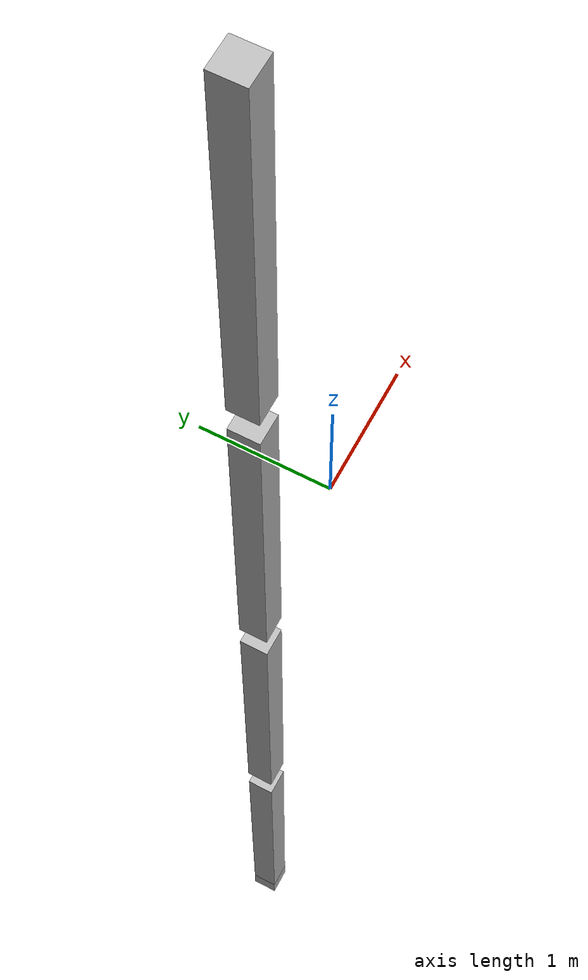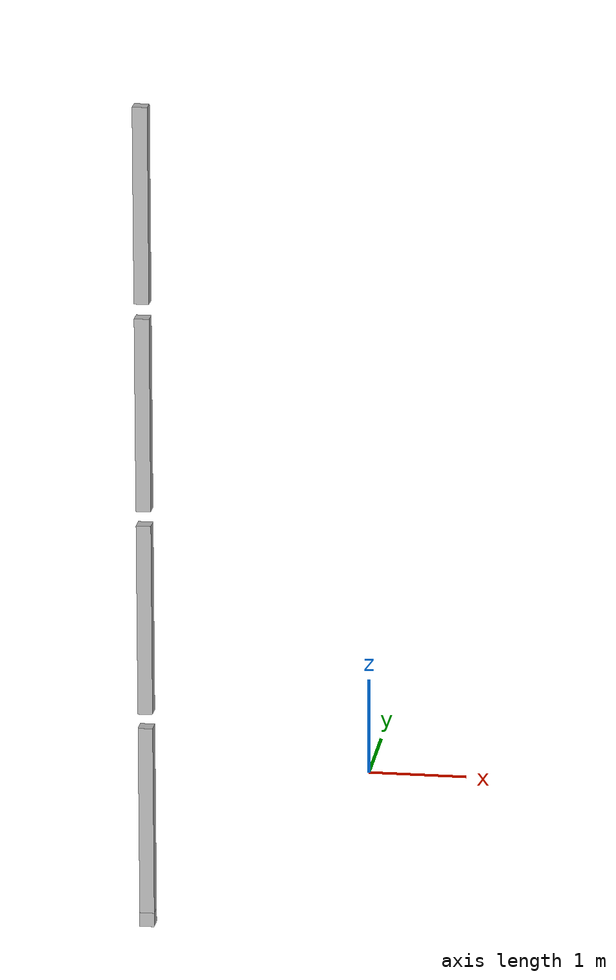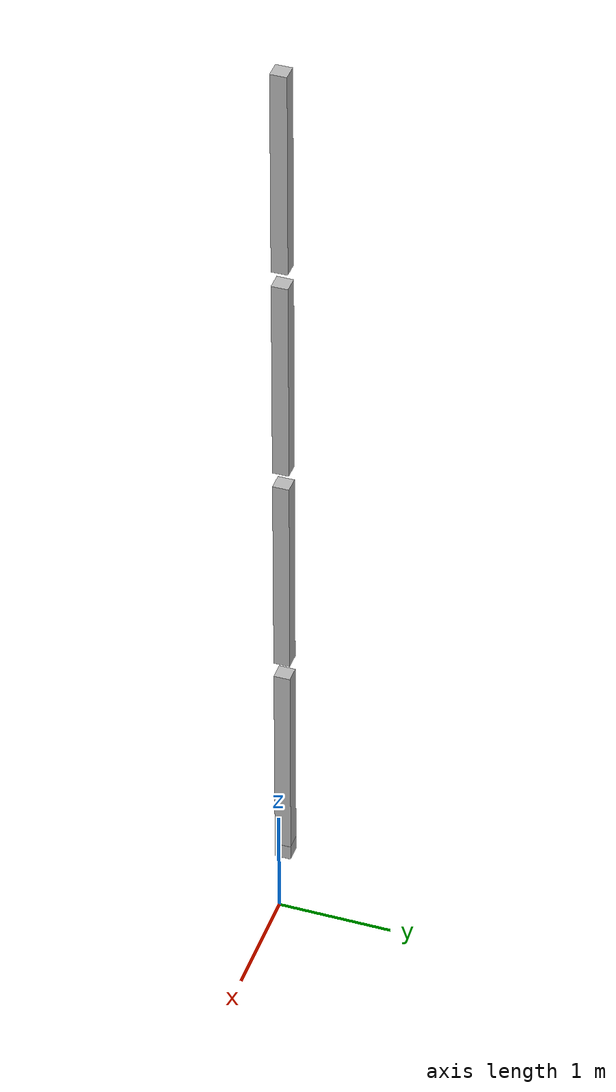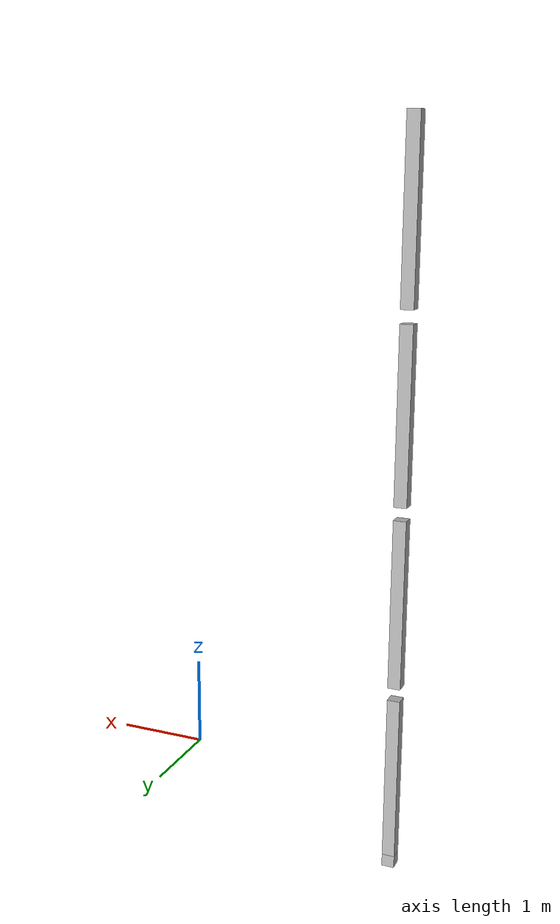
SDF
<sdf version="1.7">
 <world name="default">
  <model name="orthogonal_747_2.000.15_TS">
   <static>1</static>
   <link name="u_link_0_2_2">
    <inertial>
     <mass>1</mass>
     <inertia>
      <ixx>0.166667</ixx>
      <ixy>0</ixy>
      <ixz>0</ixz>
      <iyy>0.166667</iyy>
      <iyz>0</iyz>
      <izz>0.166667</izz>
     </inertia>
    </inertial>
    <pose>4.3 4.3 1.075 0 -0 0</pose>
    <visual name="visual_0">
     <laser_retro>379</laser_retro>
     <geometry><box><size>0.15 1e-06 0.15</size></box></geometry>
     <material>
      <script><name>Gazebo/Grey</name><uri>file://media/materials/scripts/gazebo.material</uri></script>
      <shader type="pixel"><normal_map>__default__</normal_map></shader>
      <ambient>0.678 0.498 0.659 1</ambient>
      <diffuse>0.7 0.7 0.7 1</diffuse>
      <specular>0.01 0.01 0.01 1</specular>
      <emissive>0 0 0 1</emissive>
     </material>
     <pose>0 -0.075 0 0 -0 0</pose>
     <transparency>1</transparency>
    </visual>
    <visual name="visual_1">
     <laser_retro>380</laser_retro>
     <geometry><box><size>0.15 1e-06 0.15</size></box></geometry>
     <material>
      <script><name>Gazebo/Grey</name><uri>file://media/materials/scripts/gazebo.material</uri></script>
      <shader type="pixel"><normal_map>__default__</normal_map></shader>
      <ambient>0.447 0.624 0.812 1</ambient>
      <diffuse>0.7 0.7 0.7 1</diffuse>
      <specular>0.01 0.01 0.01 1</specular>
      <emissive>0 0 0 1</emissive>
     </material>
     <pose>0 0.075 0 0 -0 0</pose>
     <transparency>1</transparency>
    </visual>
    <visual name="visual_2">
     <laser_retro>381</laser_retro>
     <geometry><box><size>0.15 0.15 1e-06</size></box></geometry>
     <material>
      <script><name>Gazebo/Grey</name><uri>file://media/materials/scripts/gazebo.material</uri></script>
      <shader type="pixel"><normal_map>__default__</normal_map></shader>
      <ambient>0.988 0.686 0.243 1</ambient>
      <diffuse>0.7 0.7 0.7 1</diffuse>
      <specular>0.01 0.01 0.01 1</specular>
      <emissive>0 0 0 1</emissive>
     </material>
     <pose>0 0 -0.075 0 -0 0</pose>
     <transparency>1</transparency>
    </visual>
    <visual name="visual_3">
     <laser_retro>382</laser_retro>
     <geometry><box><size>1e-06 0.15 0.15</size></box></geometry>
     <material>
      <script><name>Gazebo/Grey</name><uri>file://media/materials/scripts/gazebo.material</uri></script>
      <shader type="pixel"><normal_map>__default__</normal_map></shader>
      <ambient>0.988 0.914 0.31 1</ambient>
      <diffuse>0.7 0.7 0.7 1</diffuse>
      <specular>0.01 0.01 0.01 1</specular>
      <emissive>0 0 0 1</emissive>
     </material>
     <pose>0.075 0 0 0 -0 0</pose>
     <transparency>1</transparency>
    </visual>
    <visual name="visual_4">
     <laser_retro>383</laser_retro>
     <geometry><box><size>0.15 0.15 1e-06</size></box></geometry>
     <material>
      <script><name>Gazebo/Grey</name><uri>file://media/materials/scripts/gazebo.material</uri></script>
      <shader type="pixel"><normal_map>__default__</normal_map></shader>
      <ambient>0.937 0.161 0.161 1</ambient>
      <diffuse>0.7 0.7 0.7 1</diffuse>
      <specular>0.01 0.01 0.01 1</specular>
      <emissive>0 0 0 1</emissive>
     </material>
     <pose>0 0 0.075 0 -0 0</pose>
     <transparency>1</transparency>
    </visual>
    <visual name="visual_5">
     <laser_retro>384</laser_retro>
     <geometry><box><size>1e-06 0.15 0.15</size></box></geometry>
     <material>
      <script><name>Gazebo/Grey</name><uri>file://media/materials/scripts/gazebo.material</uri></script>
      <shader type="pixel"><normal_map>__default__</normal_map></shader>
      <ambient>0.541 0.886 0.204 1</ambient>
      <diffuse>0.7 0.7 0.7 1</diffuse>
      <specular>0.01 0.01 0.01 1</specular>
      <emissive>0 0 0 1</emissive>
     </material>
     <pose>-0.075 0 0 0 -0 0</pose>
     <transparency>1</transparency>
    </visual>
    <visual name="visual_texture">
     <geometry><box><size>0.149985 0.149985 0.149985</size></box></geometry>
     <material>
      <script>
       <uri>model://BASE_MODELS/simple_block_v2_textured/materials/scripts</uri>
       <uri>model://BASE_MODELS/simple_block_v2_textured/materials/textures</uri>
       <name>metal</name>
      </script>
     </material>
     <laser_retro>385</laser_retro>
    </visual>
    <collision name="collision">
     <geometry><box><size>0.15 0.15 0.15</size></box></geometry>
     <surface>
      <friction>
       <ode><mu>1</mu><mu2>1</mu2><fdir1>0 0 0</fdir1><slip1>0</slip1><slip2>0</slip2></ode>
       <torsional>
        <coefficient>1</coefficient>
        <patch_radius>0</patch_radius>
        <surface_radius>0</surface_radius>
        <use_patch_radius>1</use_patch_radius>
        <ode><slip>0</slip></ode>
       </torsional>
      </friction>
      <bounce><restitution_coefficient>0</restitution_coefficient><threshold>1e+06</threshold></bounce>
      <contact>
       <collide_without_contact>0</collide_without_contact>
       <collide_without_contact_bitmask>1</collide_without_contact_bitmask>
       <collide_bitmask>1</collide_bitmask>
       <ode>
        <soft_cfm>0</soft_cfm>
        <soft_erp>0.2</soft_erp>
        <kp>1e+13</kp>
        <kd>1</kd>
        <max_vel>0.01</max_vel>
        <min_depth>0</min_depth>
       </ode>
       <bullet>
        <split_impulse>1</split_impulse>
        <split_impulse_penetration_threshold>-0.01</split_impulse_penetration_threshold>
        <soft_cfm>0</soft_cfm>
        <soft_erp>0.2</soft_erp>
        <kp>1e+13</kp>
        <kd>1</kd>
       </bullet>
      </contact>
     </surface>
    </collision>
   </link>
   <link name="z_link_1_2_2">
    <inertial>
     <mass>1</mass>
     <inertia>
      <ixx>0.166667</ixx>
      <ixy>0</ixy>
      <ixz>0</ixz>
      <iyy>0.166667</iyy>
      <iyz>0</iyz>
      <izz>0.166667</izz>
     </inertia>
    </inertial>
    <pose>4.3 4.3 2.15 0 -0 0</pose>
    <visual name="visual_0">
     <laser_retro>1205</laser_retro>
     <geometry><box><size>0.15 1e-06 2</size></box></geometry>
     <material>
      <script><name>Gazebo/Grey</name><uri>file://media/materials/scripts/gazebo.material</uri></script>
      <shader type="pixel"><normal_map>__default__</normal_map></shader>
      <ambient>0.678 0.498 0.659 1</ambient>
      <diffuse>0.7 0.7 0.7 1</diffuse>
      <specular>0.01 0.01 0.01 1</specular>
      <emissive>0 0 0 1</emissive>
     </material>
     <pose>0 -0.075 0 0 -0 0</pose>
     <transparency>1</transparency>
    </visual>
    <visual name="visual_1">
     <laser_retro>1206</laser_retro>
     <geometry><box><size>0.15 1e-06 2</size></box></geometry>
     <material>
      <script><name>Gazebo/Grey</name><uri>file://media/materials/scripts/gazebo.material</uri></script>
      <shader type="pixel"><normal_map>__default__</normal_map></shader>
      <ambient>0.447 0.624 0.812 1</ambient>
      <diffuse>0.7 0.7 0.7 1</diffuse>
      <specular>0.01 0.01 0.01 1</specular>
      <emissive>0 0 0 1</emissive>
     </material>
     <pose>0 0.075 0 0 -0 0</pose>
     <transparency>1</transparency>
    </visual>
    <visual name="visual_2">
     <laser_retro>1207</laser_retro>
     <geometry><box><size>0.15 0.15 1e-06</size></box></geometry>
     <material>
      <script><name>Gazebo/Grey</name><uri>file://media/materials/scripts/gazebo.material</uri></script>
      <shader type="pixel"><normal_map>__default__</normal_map></shader>
      <ambient>0.988 0.686 0.243 1</ambient>
      <diffuse>0.7 0.7 0.7 1</diffuse>
      <specular>0.01 0.01 0.01 1</specular>
      <emissive>0 0 0 1</emissive>
     </material>
     <pose>0 0 -1 0 -0 0</pose>
     <transparency>1</transparency>
    </visual>
    <visual name="visual_3">
     <laser_retro>1208</laser_retro>
     <geometry><box><size>1e-06 0.15 2</size></box></geometry>
     <material>
      <script><name>Gazebo/Grey</name><uri>file://media/materials/scripts/gazebo.material</uri></script>
      <shader type="pixel"><normal_map>__default__</normal_map></shader>
      <ambient>0.988 0.914 0.31 1</ambient>
      <diffuse>0.7 0.7 0.7 1</diffuse>
      <specular>0.01 0.01 0.01 1</specular>
      <emissive>0 0 0 1</emissive>
     </material>
     <pose>0.075 0 0 0 -0 0</pose>
     <transparency>1</transparency>
    </visual>
    <visual name="visual_4">
     <laser_retro>1209</laser_retro>
     <geometry><box><size>0.15 0.15 1e-06</size></box></geometry>
     <material>
      <script><name>Gazebo/Grey</name><uri>file://media/materials/scripts/gazebo.material</uri></script>
      <shader type="pixel"><normal_map>__default__</normal_map></shader>
      <ambient>0.937 0.161 0.161 1</ambient>
      <diffuse>0.7 0.7 0.7 1</diffuse>
      <specular>0.01 0.01 0.01 1</specular>
      <emissive>0 0 0 1</emissive>
     </material>
     <pose>0 0 1 0 -0 0</pose>
     <transparency>1</transparency>
    </visual>
    <visual name="visual_5">
     <laser_retro>1210</laser_retro>
     <geometry><box><size>1e-06 0.15 2</size></box></geometry>
     <material>
      <script><name>Gazebo/Grey</name><uri>file://media/materials/scripts/gazebo.material</uri></script>
      <shader type="pixel"><normal_map>__default__</normal_map></shader>
      <ambient>0.541 0.886 0.204 1</ambient>
      <diffuse>0.7 0.7 0.7 1</diffuse>
      <specular>0.01 0.01 0.01 1</specular>
      <emissive>0 0 0 1</emissive>
     </material>
     <pose>-0.075 0 0 0 -0 0</pose>
     <transparency>1</transparency>
    </visual>
    <visual name="visual_texture">
     <geometry><box><size>0.149985 0.149985 1.9998</size></box></geometry>
     <material>
      <script>
       <uri>model://BASE_MODELS/simple_block_v2_textured/materials/scripts</uri>
       <uri>model://BASE_MODELS/simple_block_v2_textured/materials/textures</uri>
       <name>metal</name>
      </script>
     </material>
     <laser_retro>1211</laser_retro>
    </visual>
    <collision name="collision">
     <geometry><box><size>0.15 0.15 2</size></box></geometry>
     <surface>
      <friction>
       <ode><mu>1</mu><mu2>1</mu2><fdir1>0 0 0</fdir1><slip1>0</slip1><slip2>0</slip2></ode>
       <torsional>
        <coefficient>1</coefficient>
        <patch_radius>0</patch_radius>
        <surface_radius>0</surface_radius>
        <use_patch_radius>1</use_patch_radius>
        <ode><slip>0</slip></ode>
       </torsional>
      </friction>
      <bounce><restitution_coefficient>0</restitution_coefficient><threshold>1e+06</threshold></bounce>
      <contact>
       <collide_without_contact>0</collide_without_contact>
       <collide_without_contact_bitmask>1</collide_without_contact_bitmask>
       <collide_bitmask>1</collide_bitmask>
       <ode>
        <soft_cfm>0</soft_cfm>
        <soft_erp>0.2</soft_erp>
        <kp>1e+13</kp>
        <kd>1</kd>
        <max_vel>0.01</max_vel>
        <min_depth>0</min_depth>
       </ode>
       <bullet>
        <split_impulse>1</split_impulse>
        <split_impulse_penetration_threshold>-0.01</split_impulse_penetration_threshold>
        <soft_cfm>0</soft_cfm>
        <soft_erp>0.2</soft_erp>
        <kp>1e+13</kp>
        <kd>1</kd>
       </bullet>
      </contact>
     </surface>
    </collision>
   </link>
   <link name="z_link_2_2_2">
    <inertial>
     <mass>1</mass>
     <inertia>
      <ixx>0.166667</ixx>
      <ixy>0</ixy>
      <ixz>0</ixz>
      <iyy>0.166667</iyy>
      <iyz>0</iyz>
      <izz>0.166667</izz>
     </inertia>
    </inertial>
    <pose>4.3 4.3 4.3 0 -0 0</pose>
    <visual name="visual_0">
     <laser_retro>2108</laser_retro>
     <geometry><box><size>0.15 1e-06 2</size></box></geometry>
     <material>
      <script><name>Gazebo/Grey</name><uri>file://media/materials/scripts/gazebo.material</uri></script>
      <shader type="pixel"><normal_map>__default__</normal_map></shader>
      <ambient>0.678 0.498 0.659 1</ambient>
      <diffuse>0.7 0.7 0.7 1</diffuse>
      <specular>0.01 0.01 0.01 1</specular>
      <emissive>0 0 0 1</emissive>
     </material>
     <pose>0 -0.075 0 0 -0 0</pose>
     <transparency>1</transparency>
    </visual>
    <visual name="visual_1">
     <laser_retro>2109</laser_retro>
     <geometry><box><size>0.15 1e-06 2</size></box></geometry>
     <material>
      <script><name>Gazebo/Grey</name><uri>file://media/materials/scripts/gazebo.material</uri></script>
      <shader type="pixel"><normal_map>__default__</normal_map></shader>
      <ambient>0.447 0.624 0.812 1</ambient>
      <diffuse>0.7 0.7 0.7 1</diffuse>
      <specular>0.01 0.01 0.01 1</specular>
      <emissive>0 0 0 1</emissive>
     </material>
     <pose>0 0.075 0 0 -0 0</pose>
     <transparency>1</transparency>
    </visual>
    <visual name="visual_2">
     <laser_retro>2110</laser_retro>
     <geometry><box><size>0.15 0.15 1e-06</size></box></geometry>
     <material>
      <script><name>Gazebo/Grey</name><uri>file://media/materials/scripts/gazebo.material</uri></script>
      <shader type="pixel"><normal_map>__default__</normal_map></shader>
      <ambient>0.988 0.686 0.243 1</ambient>
      <diffuse>0.7 0.7 0.7 1</diffuse>
      <specular>0.01 0.01 0.01 1</specular>
      <emissive>0 0 0 1</emissive>
     </material>
     <pose>0 0 -1 0 -0 0</pose>
     <transparency>1</transparency>
    </visual>
    <visual name="visual_3">
     <laser_retro>2111</laser_retro>
     <geometry><box><size>1e-06 0.15 2</size></box></geometry>
     <material>
      <script><name>Gazebo/Grey</name><uri>file://media/materials/scripts/gazebo.material</uri></script>
      <shader type="pixel"><normal_map>__default__</normal_map></shader>
      <ambient>0.988 0.914 0.31 1</ambient>
      <diffuse>0.7 0.7 0.7 1</diffuse>
      <specular>0.01 0.01 0.01 1</specular>
      <emissive>0 0 0 1</emissive>
     </material>
     <pose>0.075 0 0 0 -0 0</pose>
     <transparency>1</transparency>
    </visual>
    <visual name="visual_4">
     <laser_retro>2112</laser_retro>
     <geometry><box><size>0.15 0.15 1e-06</size></box></geometry>
     <material>
      <script><name>Gazebo/Grey</name><uri>file://media/materials/scripts/gazebo.material</uri></script>
      <shader type="pixel"><normal_map>__default__</normal_map></shader>
      <ambient>0.937 0.161 0.161 1</ambient>
      <diffuse>0.7 0.7 0.7 1</diffuse>
      <specular>0.01 0.01 0.01 1</specular>
      <emissive>0 0 0 1</emissive>
     </material>
     <pose>0 0 1 0 -0 0</pose>
     <transparency>1</transparency>
    </visual>
    <visual name="visual_5">
     <laser_retro>2113</laser_retro>
     <geometry><box><size>1e-06 0.15 2</size></box></geometry>
     <material>
      <script><name>Gazebo/Grey</name><uri>file://media/materials/scripts/gazebo.material</uri></script>
      <shader type="pixel"><normal_map>__default__</normal_map></shader>
      <ambient>0.541 0.886 0.204 1</ambient>
      <diffuse>0.7 0.7 0.7 1</diffuse>
      <specular>0.01 0.01 0.01 1</specular>
      <emissive>0 0 0 1</emissive>
     </material>
     <pose>-0.075 0 0 0 -0 0</pose>
     <transparency>1</transparency>
    </visual>
    <visual name="visual_texture">
     <geometry><box><size>0.149985 0.149985 1.9998</size></box></geometry>
     <material>
      <script>
       <uri>model://BASE_MODELS/simple_block_v2_textured/materials/scripts</uri>
       <uri>model://BASE_MODELS/simple_block_v2_textured/materials/textures</uri>
       <name>metal</name>
      </script>
     </material>
     <laser_retro>2114</laser_retro>
    </visual>
    <collision name="collision">
     <geometry><box><size>0.15 0.15 2</size></box></geometry>
     <surface>
      <friction>
       <ode><mu>1</mu><mu2>1</mu2><fdir1>0 0 0</fdir1><slip1>0</slip1><slip2>0</slip2></ode>
       <torsional>
        <coefficient>1</coefficient>
        <patch_radius>0</patch_radius>
        <surface_radius>0</surface_radius>
        <use_patch_radius>1</use_patch_radius>
        <ode><slip>0</slip></ode>
       </torsional>
      </friction>
      <bounce><restitution_coefficient>0</restitution_coefficient><threshold>1e+06</threshold></bounce>
      <contact>
       <collide_without_contact>0</collide_without_contact>
       <collide_without_contact_bitmask>1</collide_without_contact_bitmask>
       <collide_bitmask>1</collide_bitmask>
       <ode>
        <soft_cfm>0</soft_cfm>
        <soft_erp>0.2</soft_erp>
        <kp>1e+13</kp>
        <kd>1</kd>
        <max_vel>0.01</max_vel>
        <min_depth>0</min_depth>
       </ode>
       <bullet>
        <split_impulse>1</split_impulse>
        <split_impulse_penetration_threshold>-0.01</split_impulse_penetration_threshold>
        <soft_cfm>0</soft_cfm>
        <soft_erp>0.2</soft_erp>
        <kp>1e+13</kp>
        <kd>1</kd>
       </bullet>
      </contact>
     </surface>
    </collision>
   </link>
   <link name="z_link_3_2_2">
    <inertial>
     <mass>1</mass>
     <inertia>
      <ixx>0.166667</ixx>
      <ixy>0</ixy>
      <ixz>0</ixz>
      <iyy>0.166667</iyy>
      <iyz>0</iyz>
      <izz>0.166667</izz>
     </inertia>
    </inertial>
    <pose>4.3 4.3 6.45 0 -0 0</pose>
    <visual name="visual_0">
     <laser_retro>3011</laser_retro>
     <geometry><box><size>0.15 1e-06 2</size></box></geometry>
     <material>
      <script><name>Gazebo/Grey</name><uri>file://media/materials/scripts/gazebo.material</uri></script>
      <shader type="pixel"><normal_map>__default__</normal_map></shader>
      <ambient>0.678 0.498 0.659 1</ambient>
      <diffuse>0.7 0.7 0.7 1</diffuse>
      <specular>0.01 0.01 0.01 1</specular>
      <emissive>0 0 0 1</emissive>
     </material>
     <pose>0 -0.075 0 0 -0 0</pose>
     <transparency>1</transparency>
    </visual>
    <visual name="visual_1">
     <laser_retro>3012</laser_retro>
     <geometry><box><size>0.15 1e-06 2</size></box></geometry>
     <material>
      <script><name>Gazebo/Grey</name><uri>file://media/materials/scripts/gazebo.material</uri></script>
      <shader type="pixel"><normal_map>__default__</normal_map></shader>
      <ambient>0.447 0.624 0.812 1</ambient>
      <diffuse>0.7 0.7 0.7 1</diffuse>
      <specular>0.01 0.01 0.01 1</specular>
      <emissive>0 0 0 1</emissive>
     </material>
     <pose>0 0.075 0 0 -0 0</pose>
     <transparency>1</transparency>
    </visual>
    <visual name="visual_2">
     <laser_retro>3013</laser_retro>
     <geometry><box><size>0.15 0.15 1e-06</size></box></geometry>
     <material>
      <script><name>Gazebo/Grey</name><uri>file://media/materials/scripts/gazebo.material</uri></script>
      <shader type="pixel"><normal_map>__default__</normal_map></shader>
      <ambient>0.988 0.686 0.243 1</ambient>
      <diffuse>0.7 0.7 0.7 1</diffuse>
      <specular>0.01 0.01 0.01 1</specular>
      <emissive>0 0 0 1</emissive>
     </material>
     <pose>0 0 -1 0 -0 0</pose>
     <transparency>1</transparency>
    </visual>
    <visual name="visual_3">
     <laser_retro>3014</laser_retro>
     <geometry><box><size>1e-06 0.15 2</size></box></geometry>
     <material>
      <script><name>Gazebo/Grey</name><uri>file://media/materials/scripts/gazebo.material</uri></script>
      <shader type="pixel"><normal_map>__default__</normal_map></shader>
      <ambient>0.988 0.914 0.31 1</ambient>
      <diffuse>0.7 0.7 0.7 1</diffuse>
      <specular>0.01 0.01 0.01 1</specular>
      <emissive>0 0 0 1</emissive>
     </material>
     <pose>0.075 0 0 0 -0 0</pose>
     <transparency>1</transparency>
    </visual>
    <visual name="visual_4">
     <laser_retro>3015</laser_retro>
     <geometry><box><size>0.15 0.15 1e-06</size></box></geometry>
     <material>
      <script><name>Gazebo/Grey</name><uri>file://media/materials/scripts/gazebo.material</uri></script>
      <shader type="pixel"><normal_map>__default__</normal_map></shader>
      <ambient>0.937 0.161 0.161 1</ambient>
      <diffuse>0.7 0.7 0.7 1</diffuse>
      <specular>0.01 0.01 0.01 1</specular>
      <emissive>0 0 0 1</emissive>
     </material>
     <pose>0 0 1 0 -0 0</pose>
     <transparency>1</transparency>
    </visual>
    <visual name="visual_5">
     <laser_retro>3016</laser_retro>
     <geometry><box><size>1e-06 0.15 2</size></box></geometry>
     <material>
      <script><name>Gazebo/Grey</name><uri>file://media/materials/scripts/gazebo.material</uri></script>
      <shader type="pixel"><normal_map>__default__</normal_map></shader>
      <ambient>0.541 0.886 0.204 1</ambient>
      <diffuse>0.7 0.7 0.7 1</diffuse>
      <specular>0.01 0.01 0.01 1</specular>
      <emissive>0 0 0 1</emissive>
     </material>
     <pose>-0.075 0 0 0 -0 0</pose>
     <transparency>1</transparency>
    </visual>
    <visual name="visual_texture">
     <geometry><box><size>0.149985 0.149985 1.9998</size></box></geometry>
     <material>
      <script>
       <uri>model://BASE_MODELS/simple_block_v2_textured/materials/scripts</uri>
       <uri>model://BASE_MODELS/simple_block_v2_textured/materials/textures</uri>
       <name>metal</name>
      </script>
     </material>
     <laser_retro>3017</laser_retro>
    </visual>
    <collision name="collision">
     <geometry><box><size>0.15 0.15 2</size></box></geometry>
     <surface>
      <friction>
       <ode><mu>1</mu><mu2>1</mu2><fdir1>0 0 0</fdir1><slip1>0</slip1><slip2>0</slip2></ode>
       <torsional>
        <coefficient>1</coefficient>
        <patch_radius>0</patch_radius>
        <surface_radius>0</surface_radius>
        <use_patch_radius>1</use_patch_radius>
        <ode><slip>0</slip></ode>
       </torsional>
      </friction>
      <bounce><restitution_coefficient>0</restitution_coefficient><threshold>1e+06</threshold></bounce>
      <contact>
       <collide_without_contact>0</collide_without_contact>
       <collide_without_contact_bitmask>1</collide_without_contact_bitmask>
       <collide_bitmask>1</collide_bitmask>
       <ode>
        <soft_cfm>0</soft_cfm>
        <soft_erp>0.2</soft_erp>
        <kp>1e+13</kp>
        <kd>1</kd>
        <max_vel>0.01</max_vel>
        <min_depth>0</min_depth>
       </ode>
       <bullet>
        <split_impulse>1</split_impulse>
        <split_impulse_penetration_threshold>-0.01</split_impulse_penetration_threshold>
        <soft_cfm>0</soft_cfm>
        <soft_erp>0.2</soft_erp>
        <kp>1e+13</kp>
        <kd>1</kd>
       </bullet>
      </contact>
     </surface>
    </collision>
   </link>
   <link name="z_link_4_2_2">
    <inertial>
     <mass>1</mass>
     <inertia>
      <ixx>0.166667</ixx>
      <ixy>0</ixy>
      <ixz>0</ixz>
      <iyy>0.166667</iyy>
      <iyz>0</iyz>
      <izz>0.166667</izz>
     </inertia>
    </inertial>
    <pose>4.3 4.3 8.6 0 -0 0</pose>
    <visual name="visual_0">
     <laser_retro>3914</laser_retro>
     <geometry><box><size>0.15 1e-06 2</size></box></geometry>
     <material>
      <script><name>Gazebo/Grey</name><uri>file://media/materials/scripts/gazebo.material</uri></script>
      <shader type="pixel"><normal_map>__default__</normal_map></shader>
      <ambient>0.678 0.498 0.659 1</ambient>
      <diffuse>0.7 0.7 0.7 1</diffuse>
      <specular>0.01 0.01 0.01 1</specular>
      <emissive>0 0 0 1</emissive>
     </material>
     <pose>0 -0.075 0 0 -0 0</pose>
     <transparency>1</transparency>
    </visual>
    <visual name="visual_1">
     <laser_retro>3915</laser_retro>
     <geometry><box><size>0.15 1e-06 2</size></box></geometry>
     <material>
      <script><name>Gazebo/Grey</name><uri>file://media/materials/scripts/gazebo.material</uri></script>
      <shader type="pixel"><normal_map>__default__</normal_map></shader>
      <ambient>0.447 0.624 0.812 1</ambient>
      <diffuse>0.7 0.7 0.7 1</diffuse>
      <specular>0.01 0.01 0.01 1</specular>
      <emissive>0 0 0 1</emissive>
     </material>
     <pose>0 0.075 0 0 -0 0</pose>
     <transparency>1</transparency>
    </visual>
    <visual name="visual_2">
     <laser_retro>3916</laser_retro>
     <geometry><box><size>0.15 0.15 1e-06</size></box></geometry>
     <material>
      <script><name>Gazebo/Grey</name><uri>file://media/materials/scripts/gazebo.material</uri></script>
      <shader type="pixel"><normal_map>__default__</normal_map></shader>
      <ambient>0.988 0.686 0.243 1</ambient>
      <diffuse>0.7 0.7 0.7 1</diffuse>
      <specular>0.01 0.01 0.01 1</specular>
      <emissive>0 0 0 1</emissive>
     </material>
     <pose>0 0 -1 0 -0 0</pose>
     <transparency>1</transparency>
    </visual>
    <visual name="visual_3">
     <laser_retro>3917</laser_retro>
     <geometry><box><size>1e-06 0.15 2</size></box></geometry>
     <material>
      <script><name>Gazebo/Grey</name><uri>file://media/materials/scripts/gazebo.material</uri></script>
      <shader type="pixel"><normal_map>__default__</normal_map></shader>
      <ambient>0.988 0.914 0.31 1</ambient>
      <diffuse>0.7 0.7 0.7 1</diffuse>
      <specular>0.01 0.01 0.01 1</specular>
      <emissive>0 0 0 1</emissive>
     </material>
     <pose>0.075 0 0 0 -0 0</pose>
     <transparency>1</transparency>
    </visual>
    <visual name="visual_4">
     <laser_retro>3918</laser_retro>
     <geometry><box><size>0.15 0.15 1e-06</size></box></geometry>
     <material>
      <script><name>Gazebo/Grey</name><uri>file://media/materials/scripts/gazebo.material</uri></script>
      <shader type="pixel"><normal_map>__default__</normal_map></shader>
      <ambient>0.937 0.161 0.161 1</ambient>
      <diffuse>0.7 0.7 0.7 1</diffuse>
      <specular>0.01 0.01 0.01 1</specular>
      <emissive>0 0 0 1</emissive>
     </material>
     <pose>0 0 1 0 -0 0</pose>
     <transparency>1</transparency>
    </visual>
    <visual name="visual_5">
     <laser_retro>3919</laser_retro>
     <geometry><box><size>1e-06 0.15 2</size></box></geometry>
     <material>
      <script><name>Gazebo/Grey</name><uri>file://media/materials/scripts/gazebo.material</uri></script>
      <shader type="pixel"><normal_map>__default__</normal_map></shader>
      <ambient>0.541 0.886 0.204 1</ambient>
      <diffuse>0.7 0.7 0.7 1</diffuse>
      <specular>0.01 0.01 0.01 1</specular>
      <emissive>0 0 0 1</emissive>
     </material>
     <pose>-0.075 0 0 0 -0 0</pose>
     <transparency>1</transparency>
    </visual>
    <visual name="visual_texture">
     <geometry><box><size>0.149985 0.149985 1.9998</size></box></geometry>
     <material>
      <script>
       <uri>model://BASE_MODELS/simple_block_v2_textured/materials/scripts</uri>
       <uri>model://BASE_MODELS/simple_block_v2_textured/materials/textures</uri>
       <name>metal</name>
      </script>
     </material>
     <laser_retro>3920</laser_retro>
    </visual>
    <collision name="collision">
     <geometry><box><size>0.15 0.15 2</size></box></geometry>
     <surface>
      <friction>
       <ode><mu>1</mu><mu2>1</mu2><fdir1>0 0 0</fdir1><slip1>0</slip1><slip2>0</slip2></ode>
       <torsional>
        <coefficient>1</coefficient>
        <patch_radius>0</patch_radius>
        <surface_radius>0</surface_radius>
        <use_patch_radius>1</use_patch_radius>
        <ode><slip>0</slip></ode>
       </torsional>
      </friction>
      <bounce><restitution_coefficient>0</restitution_coefficient><threshold>1e+06</threshold></bounce>
      <contact>
       <collide_without_contact>0</collide_without_contact>
       <collide_without_contact_bitmask>1</collide_without_contact_bitmask>
       <collide_bitmask>1</collide_bitmask>
       <ode>
        <soft_cfm>0</soft_cfm>
        <soft_erp>0.2</soft_erp>
        <kp>1e+13</kp>
        <kd>1</kd>
        <max_vel>0.01</max_vel>
        <min_depth>0</min_depth>
       </ode>
       <bullet>
        <split_impulse>1</split_impulse>
        <split_impulse_penetration_threshold>-0.01</split_impulse_penetration_threshold>
        <soft_cfm>0</soft_cfm>
        <soft_erp>0.2</soft_erp>
        <kp>1e+13</kp>
        <kd>1</kd>
       </bullet>
      </contact>
     </surface>
    </collision>
   </link>
   <pose>-6.47624 -5 -2.5 0 -0 0</pose>
  </model>
 </world>
</sdf>
